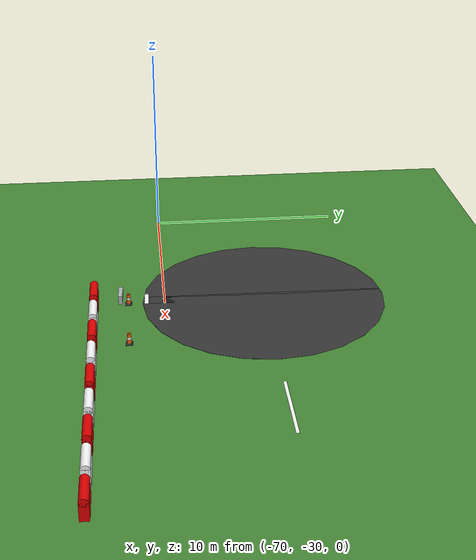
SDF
<sdf version="1.6">
 <world name="sem_silesia_ring_2026">
  <model name="ground_plane">
   <static>true</static>
   <link name="link">
    <collision name="collision">
     <geometry><plane><normal>0 0 1</normal><size>600 600</size></plane></geometry>
     <surface><friction><ode><mu>0.6</mu><mu2>0.6</mu2></ode></friction></surface>
    </collision>
    <visual name="visual">
     <geometry><plane><normal>0 0 1</normal><size>600 600</size></plane></geometry>
     <material><ambient>0.28 0.55 0.22 1</ambient><diffuse>0.28 0.55 0.22 1</diffuse></material>
    </visual>
   </link>
  </model>
  <model name="road_L_s89">
   <static>true</static>
   <pose>-60.2182 -24.9981 0.0030 0 0 6.2657</pose>
   <link name="link">
    <visual name="v">
     <geometry><box><size>0.6957 12.0000 0.0060</size></box></geometry>
     <material><ambient>0.22 0.22 0.22 1</ambient><diffuse>0.22 0.22 0.22 1</diffuse></material>
    </visual>
    <collision name="c">
     <geometry><box><size>0.6957 12.0000 0.0060</size></box></geometry>
     <surface><friction><ode><mu>0.9</mu><mu2>0.9</mu2></ode></friction></surface>
    </collision>
   </link>
  </model>
  <model name="jnt_bl">
   <static>true</static>
   <pose>-60.0000 -25.0000 0.0030 0 0 0</pose>
   <link name="link">
    <visual name="v">
     <geometry><cylinder><radius>6.1000</radius><length>0.0060</length></cylinder></geometry>
     <material><ambient>0.22 0.22 0.22 1</ambient><diffuse>0.22 0.22 0.22 1</diffuse></material>
    </visual>
    <collision name="c">
     <geometry><cylinder><radius>6.1000</radius><length>0.0060</length></cylinder></geometry>
     <surface><friction><ode><mu>0.9</mu><mu2>0.9</mu2></ode></friction></surface>
    </collision>
   </link>
  </model>
  <model name="wl_Lo_jnt59">
   <static>true</static>
   <pose>-60.9630 -30.8748 0.0050 0 0 0</pose>
   <link name="link">
    <visual name="v">
     <geometry><cylinder><radius>0.1000</radius><length>0.0040</length></cylinder></geometry>
     <material><ambient>1 1 1 1</ambient><diffuse>1 1 1 1</diffuse></material>
    </visual>
    <collision name="c">
     <geometry><cylinder><radius>0.1000</radius><length>0.0040</length></cylinder></geometry>
     <surface><friction><ode><mu>0.9</mu><mu2>0.9</mu2></ode></friction></surface>
    </collision>
   </link>
  </model>
  <model name="wl_Lo_s59">
   <static>true</static>
   <pose>-60.4817 -30.8937 0.0050 0 0 6.2570</pose>
   <link name="link">
    <visual name="v">
     <geometry><box><size>1.0185 0.2000 0.0040</size></box></geometry>
     <material><ambient>1 1 1 1</ambient><diffuse>1 1 1 1</diffuse></material>
    </visual>
    <collision name="c">
     <geometry><box><size>1.0185 0.2000 0.0040</size></box></geometry>
     <surface><friction><ode><mu>0.9</mu><mu2>0.9</mu2></ode></friction></surface>
    </collision>
   </link>
  </model>
  <model name="cd_s2_0">
   <static>true</static>
   <pose>-50.0000 -25.0000 0.0050 0 0 0.0000</pose>
   <link name="link">
    <visual name="v">
     <geometry><box><size>4.0000 0.1500 0.0080</size></box></geometry>
     <material><ambient>1 1 1 1</ambient><diffuse>1 1 1 1</diffuse></material>
    </visual>
    <collision name="c">
     <geometry><box><size>4.0000 0.1500 0.0080</size></box></geometry>
     <surface><friction><ode><mu>0.9</mu><mu2>0.9</mu2></ode></friction></surface>
    </collision>
   </link>
  </model>
  <model name="arm_Lo_s59">
   <static>true</static>
   <pose>-60.5157 -32.1932 0.2250 0 0 6.2570</pose>
   <link name="link">
    <visual name="v">
     <geometry><box><size>1.0866 0.2000 0.4500</size></box></geometry>
     <material><ambient>0.70 0.72 0.74 1</ambient><diffuse>0.70 0.72 0.74 1</diffuse></material>
    </visual>
    <collision name="c">
     <geometry><box><size>1.0866 0.2000 0.4500</size></box></geometry>
     <surface><friction><ode><mu>0.9</mu><mu2>0.9</mu2></ode></friction></surface>
    </collision>
   </link>
  </model>
  <model name="p_bar_L_out_0">
   <static>true</static>
   <pose>-60.0000 -33.5000 0.4 0 0 0.0000</pose>
   <link name="link">
    <visual name="v">
     <geometry><box><size>1.5 0.4 0.8</size></box></geometry>
     <material><ambient>0.9 0 0 1</ambient><diffuse>0.9 0 0 1</diffuse></material>
    </visual>
    <visual name="top_round">
     <pose>0 0 0.4 0 1.5708 0</pose>
     <geometry><cylinder><radius>0.2</radius><length>1.5</length></cylinder></geometry>
     <material><ambient>0.9 0 0 1</ambient><diffuse>0.9 0 0 1</diffuse></material>
    </visual>
    <collision name="c"><geometry><box><size>1.5 0.4 0.8</size></box></geometry></collision>
   </link>
  </model>
  <model name="p_bar_L_out_1">
   <static>true</static>
   <pose>-58.0000 -33.5000 0.4 0 0 0.0000</pose>
   <link name="link">
    <visual name="v">
     <geometry><box><size>1.5 0.4 0.8</size></box></geometry>
     <material><ambient>1 1 1 1</ambient><diffuse>1 1 1 1</diffuse></material>
    </visual>
    <visual name="top_round">
     <pose>0 0 0.4 0 1.5708 0</pose>
     <geometry><cylinder><radius>0.2</radius><length>1.5</length></cylinder></geometry>
     <material><ambient>1 1 1 1</ambient><diffuse>1 1 1 1</diffuse></material>
    </visual>
    <collision name="c"><geometry><box><size>1.5 0.4 0.8</size></box></geometry></collision>
   </link>
  </model>
  <model name="p_bar_L_out_2">
   <static>true</static>
   <pose>-56.0000 -33.5000 0.4 0 0 0.0000</pose>
   <link name="link">
    <visual name="v">
     <geometry><box><size>1.5 0.4 0.8</size></box></geometry>
     <material><ambient>0.9 0 0 1</ambient><diffuse>0.9 0 0 1</diffuse></material>
    </visual>
    <visual name="top_round">
     <pose>0 0 0.4 0 1.5708 0</pose>
     <geometry><cylinder><radius>0.2</radius><length>1.5</length></cylinder></geometry>
     <material><ambient>0.9 0 0 1</ambient><diffuse>0.9 0 0 1</diffuse></material>
    </visual>
    <collision name="c"><geometry><box><size>1.5 0.4 0.8</size></box></geometry></collision>
   </link>
  </model>
  <model name="p_bar_L_out_3">
   <static>true</static>
   <pose>-54.0000 -33.5000 0.4 0 0 0.0000</pose>
   <link name="link">
    <visual name="v">
     <geometry><box><size>1.5 0.4 0.8</size></box></geometry>
     <material><ambient>1 1 1 1</ambient><diffuse>1 1 1 1</diffuse></material>
    </visual>
    <visual name="top_round">
     <pose>0 0 0.4 0 1.5708 0</pose>
     <geometry><cylinder><radius>0.2</radius><length>1.5</length></cylinder></geometry>
     <material><ambient>1 1 1 1</ambient><diffuse>1 1 1 1</diffuse></material>
    </visual>
    <collision name="c"><geometry><box><size>1.5 0.4 0.8</size></box></geometry></collision>
   </link>
  </model>
  <model name="p_bar_L_out_4">
   <static>true</static>
   <pose>-52.0000 -33.5000 0.4 0 0 0.0000</pose>
   <link name="link">
    <visual name="v">
     <geometry><box><size>1.5 0.4 0.8</size></box></geometry>
     <material><ambient>0.9 0 0 1</ambient><diffuse>0.9 0 0 1</diffuse></material>
    </visual>
    <visual name="top_round">
     <pose>0 0 0.4 0 1.5708 0</pose>
     <geometry><cylinder><radius>0.2</radius><length>1.5</length></cylinder></geometry>
     <material><ambient>0.9 0 0 1</ambient><diffuse>0.9 0 0 1</diffuse></material>
    </visual>
    <collision name="c"><geometry><box><size>1.5 0.4 0.8</size></box></geometry></collision>
   </link>
  </model>
  <model name="p_bar_L_out_5">
   <static>true</static>
   <pose>-50.0000 -33.5000 0.4 0 0 0.0000</pose>
   <link name="link">
    <visual name="v">
     <geometry><box><size>1.5 0.4 0.8</size></box></geometry>
     <material><ambient>1 1 1 1</ambient><diffuse>1 1 1 1</diffuse></material>
    </visual>
    <visual name="top_round">
     <pose>0 0 0.4 0 1.5708 0</pose>
     <geometry><cylinder><radius>0.2</radius><length>1.5</length></cylinder></geometry>
     <material><ambient>1 1 1 1</ambient><diffuse>1 1 1 1</diffuse></material>
    </visual>
    <collision name="c"><geometry><box><size>1.5 0.4 0.8</size></box></geometry></collision>
   </link>
  </model>
  <model name="p_bar_L_out_6">
   <static>true</static>
   <pose>-48.0000 -33.5000 0.4 0 0 0.0000</pose>
   <link name="link">
    <visual name="v">
     <geometry><box><size>1.5 0.4 0.8</size></box></geometry>
     <material><ambient>0.9 0 0 1</ambient><diffuse>0.9 0 0 1</diffuse></material>
    </visual>
    <visual name="top_round">
     <pose>0 0 0.4 0 1.5708 0</pose>
     <geometry><cylinder><radius>0.2</radius><length>1.5</length></cylinder></geometry>
     <material><ambient>0.9 0 0 1</ambient><diffuse>0.9 0 0 1</diffuse></material>
    </visual>
    <collision name="c"><geometry><box><size>1.5 0.4 0.8</size></box></geometry></collision>
   </link>
  </model>
  <model name="p_bar_L_out_7">
   <static>true</static>
   <pose>-46.0000 -33.5000 0.4 0 0 0.0000</pose>
   <link name="link">
    <visual name="v">
     <geometry><box><size>1.5 0.4 0.8</size></box></geometry>
     <material><ambient>1 1 1 1</ambient><diffuse>1 1 1 1</diffuse></material>
    </visual>
    <visual name="top_round">
     <pose>0 0 0.4 0 1.5708 0</pose>
     <geometry><cylinder><radius>0.2</radius><length>1.5</length></cylinder></geometry>
     <material><ambient>1 1 1 1</ambient><diffuse>1 1 1 1</diffuse></material>
    </visual>
    <collision name="c"><geometry><box><size>1.5 0.4 0.8</size></box></geometry></collision>
   </link>
  </model>
  <model name="p_bar_L_out_8">
   <static>true</static>
   <pose>-44.0000 -33.5000 0.4 0 0 0.0000</pose>
   <link name="link">
    <visual name="v">
     <geometry><box><size>1.5 0.4 0.8</size></box></geometry>
     <material><ambient>0.9 0 0 1</ambient><diffuse>0.9 0 0 1</diffuse></material>
    </visual>
    <visual name="top_round">
     <pose>0 0 0.4 0 1.5708 0</pose>
     <geometry><cylinder><radius>0.2</radius><length>1.5</length></cylinder></geometry>
     <material><ambient>0.9 0 0 1</ambient><diffuse>0.9 0 0 1</diffuse></material>
    </visual>
    <collision name="c"><geometry><box><size>1.5 0.4 0.8</size></box></geometry></collision>
   </link>
  </model>
  <model name="cn_s2s_-56">
   <static>true</static>
   <pose>-56.0000 -31.8000 0 0 0 0</pose>
   <link name="link">
    <visual name="base">
     <pose>0 0 0.03 0 0 0</pose>
     <geometry><box><size>0.35 0.35 0.06</size></box></geometry>
     <material><ambient>0.08 0.08 0.08 1</ambient><diffuse>0.08 0.08 0.08 1</diffuse></material>
    </visual>
    <visual name="body">
     <pose>0 0 0.30 0 0 0</pose>
     <geometry><cylinder><radius>0.09</radius><length>0.50</length></cylinder></geometry>
     <material><ambient>1.0 0.38 0.0 1</ambient><diffuse>1.0 0.38 0.0 1</diffuse></material>
    </visual>
    <visual name="stripe">
     <pose>0 0 0.32 0 0 0</pose>
     <geometry><cylinder><radius>0.095</radius><length>0.12</length></cylinder></geometry>
     <material><ambient>1 1 1 1</ambient><diffuse>1 1 1 1</diffuse></material>
    </visual>
    <visual name="tip">
     <pose>0 0 0.57 0 0 0</pose>
     <geometry><sphere><radius>0.04</radius></sphere></geometry>
     <material><ambient>1.0 0.38 0.0 1</ambient><diffuse>1.0 0.38 0.0 1</diffuse></material>
    </visual>
    <collision name="c">
     <pose>0 0 0.28 0 0 0</pose>
     <geometry><cylinder><radius>0.09</radius><length>0.56</length></cylinder></geometry>
    </collision>
   </link>
  </model>
  <model name="cn_Lo_8">
   <static>true</static>
   <pose>-60.0000 -31.8000 0 0 0 0</pose>
   <link name="link">
    <visual name="base">
     <pose>0 0 0.03 0 0 0</pose>
     <geometry><box><size>0.35 0.35 0.06</size></box></geometry>
     <material><ambient>0.08 0.08 0.08 1</ambient><diffuse>0.08 0.08 0.08 1</diffuse></material>
    </visual>
    <visual name="body">
     <pose>0 0 0.30 0 0 0</pose>
     <geometry><cylinder><radius>0.09</radius><length>0.50</length></cylinder></geometry>
     <material><ambient>1.0 0.38 0.0 1</ambient><diffuse>1.0 0.38 0.0 1</diffuse></material>
    </visual>
    <visual name="stripe">
     <pose>0 0 0.32 0 0 0</pose>
     <geometry><cylinder><radius>0.095</radius><length>0.12</length></cylinder></geometry>
     <material><ambient>1 1 1 1</ambient><diffuse>1 1 1 1</diffuse></material>
    </visual>
    <visual name="tip">
     <pose>0 0 0.57 0 0 0</pose>
     <geometry><sphere><radius>0.04</radius></sphere></geometry>
     <material><ambient>1.0 0.38 0.0 1</ambient><diffuse>1.0 0.38 0.0 1</diffuse></material>
    </visual>
    <collision name="c">
     <pose>0 0 0.28 0 0 0</pose>
     <geometry><cylinder><radius>0.09</radius><length>0.56</length></cylinder></geometry>
    </collision>
   </link>
  </model>
 </world>
</sdf>
